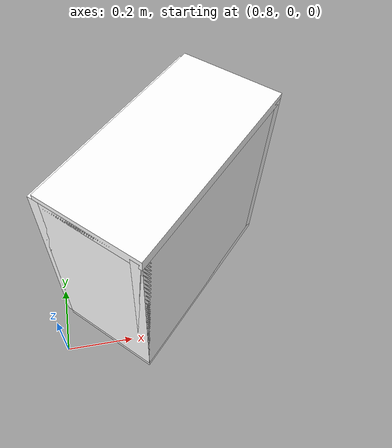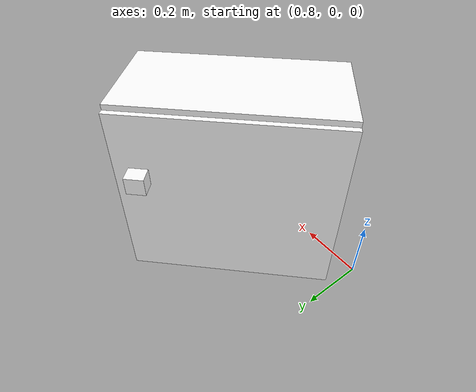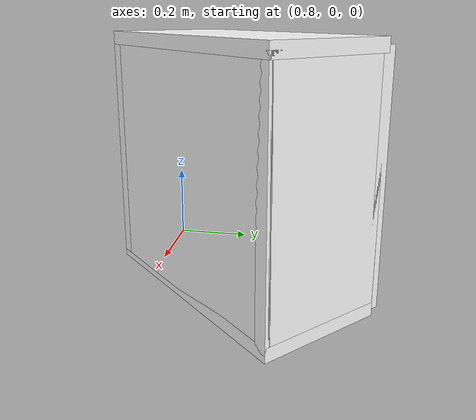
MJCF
<mujoco model="cabinet">
    <compiler angle="radian" eulerseq='zxy' />
    <option gravity = "0 0 0" />
    <option>
        <flag contact = "disable"/>
    </option>
    <statistic	extent="1.0" center="0.0 0.0 0.0"/>
    <visual>
        <map fogstart="3" fogend="5" force="0.1" znear=" 0.100000 " zfar=" 12.000000 "/>
    </visual>
    <size njmax="500" nconmax="100" />
    <actuator>
        <velocity joint="bottom_left_hinge" name="viva_revolution" kv='10'></velocity>
    </actuator>
    <asset>
        <texture builtin="flat" name="tabletex" height="32" width="32" rgb1="1 1 1" type="cube"></texture>
        <texture builtin="flat" name="objtex" height="32" width="32" rgb1="1 1 1" type="cube"></texture>
        <texture builtin="flat" name="handletex" height="32" width="32" rgb1="1 1 1" type="cube"></texture>
        <texture builtin="flat" name="wallpaper" height="32" width="32" rgb1="1 1 1" type="cube"></texture>
        <material name="geomTable" shininess="0.03" specular="0.75" texture="tabletex"></material>
        <material name="geomObj" shininess="0.03" specular="0.75" texture="objtex"></material>
        <material name="geomHandle" shininess="0.03" specular="0.75" texture="handletex"></material>
        <material name="bg" shininess="0.03" specular="0.75" texture="wallpaper"></material>
    </asset>
    <worldbody>
            <body name="cabinet_bottom" pos= " 1.148465 0.229236 0.036710 "  quat= " 0.377686 0.000000 0.000000 0.925934" >
                <inertial pos="0 0 0" mass="1" diaginertia="1 1 1" />
                <geom size= " 0.151406 0.309987 0.016122 "  type="box" material="geomObj" name="b"/>
                <body name="cabinet_left" pos= " 0.000000 -0.293865 0.287527 " >
                    <inertial pos="0 0 0" mass="1" diaginertia="1 1 1" />
                    <geom size= " 0.151406 0.016122 0.287527 "  type="box" material="geomObj" name="c" />
                </body>
                <body name="cabinet_right" pos= " 0.000000 0.293865 0.287527 " >
                    <inertial pos="0 0 0" mass="1" diaginertia="1 1 1" />
                    <geom size= " 0.151406 0.016122 0.287527 "  type="box" material="geomObj" name="d" />
                </body>
                <body name="cabinet_top" pos= " 0.000000 0.000000 0.575055 " >
                    <inertial pos="0 0 0" mass="1" diaginertia="1 1 1" />
                    <geom size= " 0.151406 0.309987 0.016122 "  type="box" material="geomObj" name="e"/>
                </body>
                <body name="cabinet_back" pos= " -0.135284 0.000000 0.287527 "  >
                    <inertial pos="0 0 0" mass="1" diaginertia="1 1 1" />
                    <geom size= " 0.016122 0.309987 0.287527 "  type="box" material="geomObj" name="f" />
                </body>
                <body name="cabinet_left_hinge" pos= " 0.151406 0.309987 0.287527 " >
                    <inertial pos= " 0.000000 -0.309987 0.000000 "  mass="1" diaginertia="1 1 1" />
                    <joint name="bottom_left_hinge" type="hinge" pos="0 0 0" axis="0 0 1" limited="true" range= "0 2.3"  />
                    <geom size= " 0.016122 0.309987 0.287527 "  pos= " 0.000000 -0.309987 0.000000 "  type="box" material="geomObj" name="g"/>
                    <body name="handle_link" pos= " 0.037852 -0.549286 0.094407 " >
                        <inertial pos="0 0 0" mass="1" diaginertia="1 1 1" />
                        <geom size= " 0.023086 0.027585 0.026644 "  type="box" material="geomHandle" name="h"/>
                    </body>
                </body>
            </body>
        <body name="external_camera_body_0" pos="0.0 0 0.00">
            <camera euler="-1.57 1.57 0.0" fovy=" 54.280851 " name="external_camera_0" pos="0.0 0 0"></camera>
            <inertial pos= " 0.00 0.0 0.000000 " mass="1" diaginertia="1 1 1" />
            <joint name="cam_j" pos="0.0 0 0" axis = "1 0 0" type="free" />
        </body>
    </worldbody>
</mujoco>
